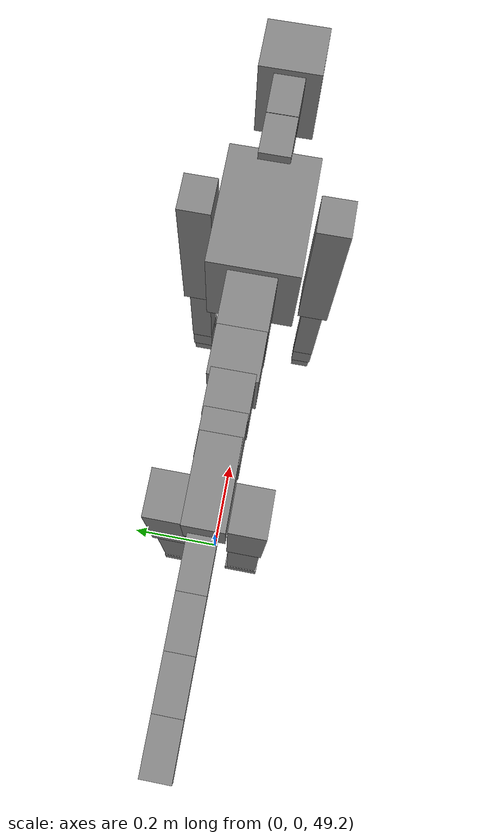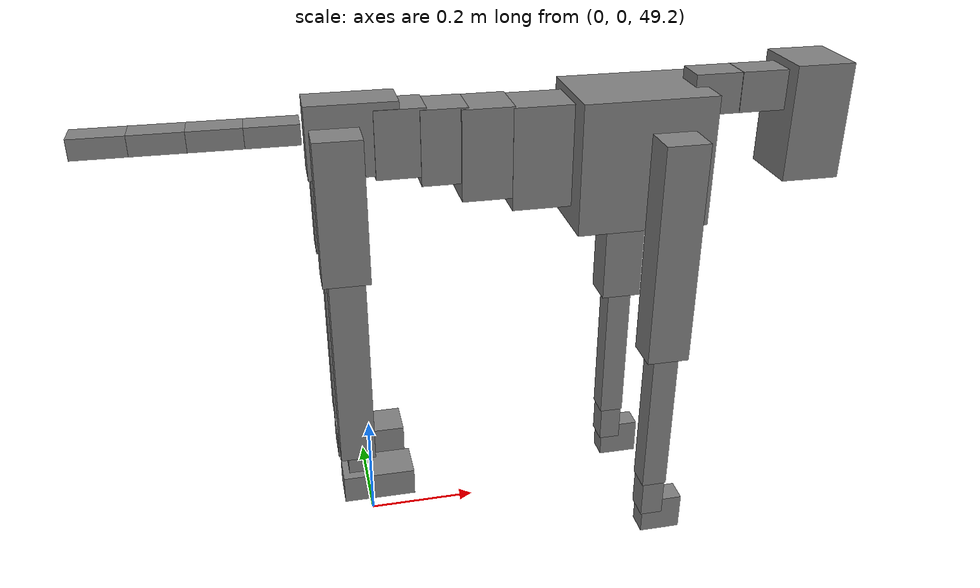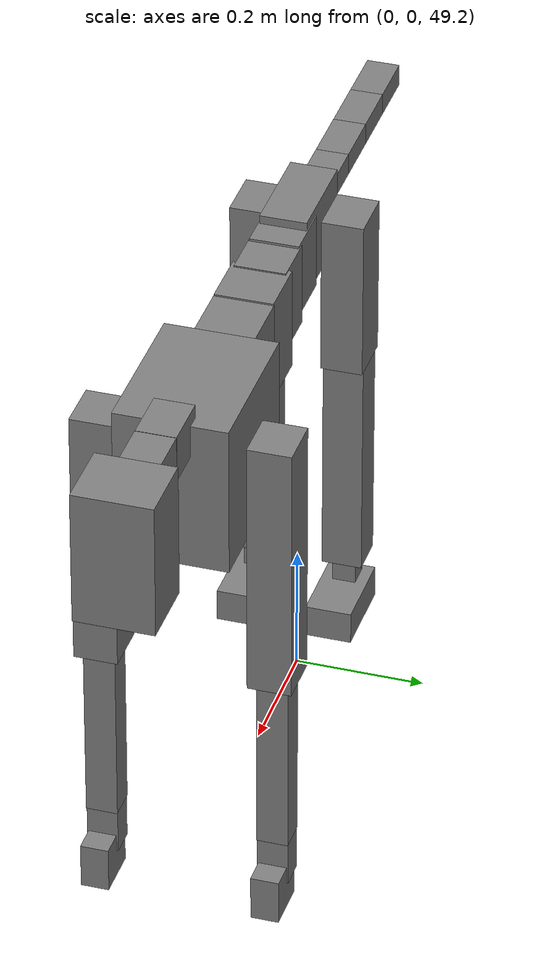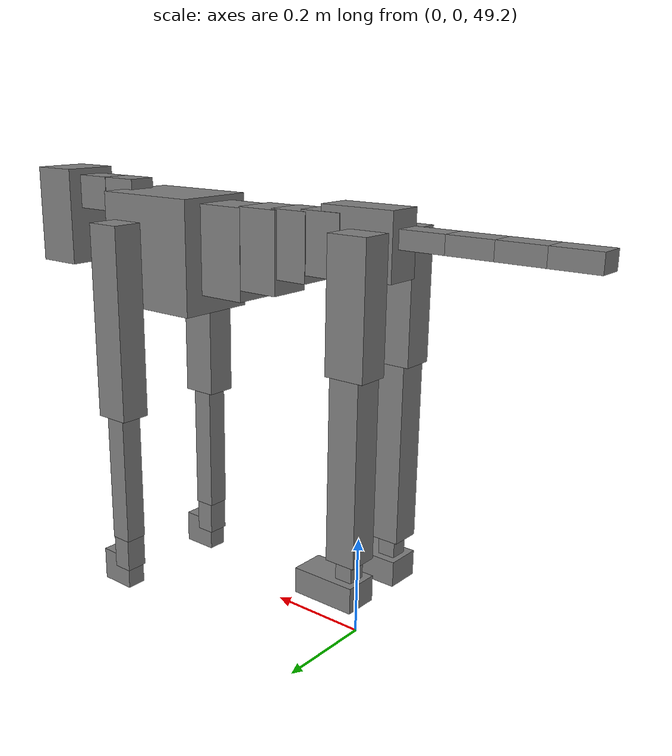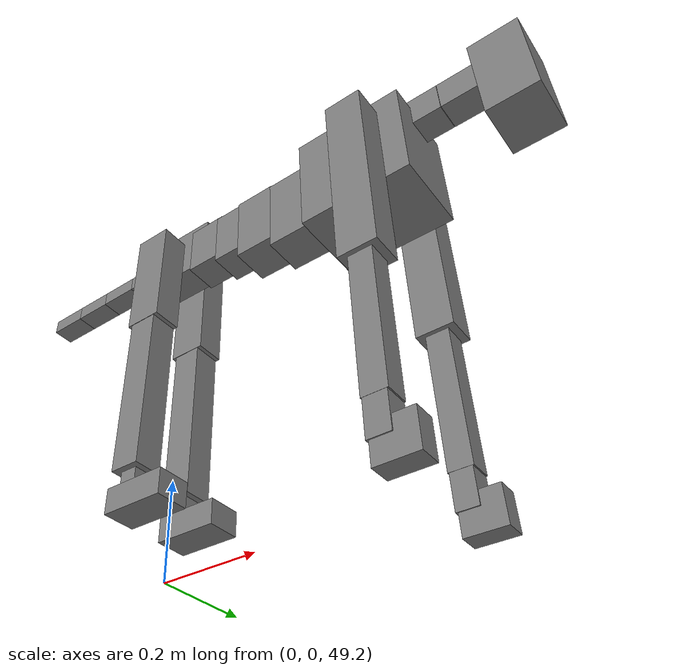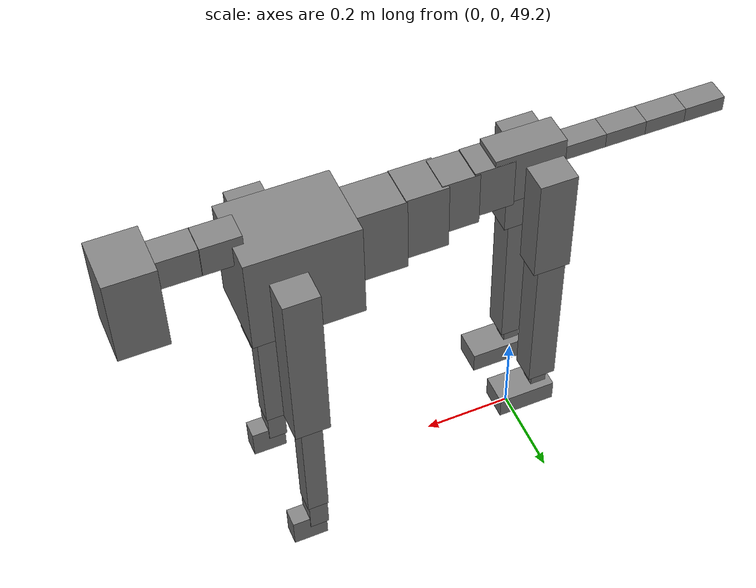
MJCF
<mujoco model="dog">

    <default>
        <joint armature="0.02" stiffness="1" damping="0.2" limited="true"/>
        <geom condim="3" friction="1 0.05 0.05" margin="0.01"/>
        <motor ctrllimited="true" ctrlrange="-1.0 1.0" forcelimited="true" gear="50"/>
    </default>

    <compiler inertiafromgeom="true" angle="radian"/>

    <option timestep="0.016" iterations="50" tolerance="1e-10" solver="Newton" jacobian="dense" cone="pyramidal"/>

    <size nconmax="20000" njmax="60000" nstack="5000000"/>
    <visual>
        <map force="0.1" zfar="30"/>
        <rgba haze="0.15 0.25 0.35 1"/>
        <quality shadowsize="2048"/>
        <global offwidth="800" offheight="800"/>
    </visual>

    <asset>
        <texture type="skybox" builtin="gradient" rgb1="0.3 0.5 0.7" rgb2="0 0 0" width="512" height="512"/>
        <texture name="texplane" type="2d" builtin="checker" rgb1=".2 .3 .4" rgb2=".1 0.15 0.2" width="512" height="512"
                 mark="cross" markrgb=".8 .8 .8"/>
        <texture name="texgeom" type="cube" builtin="flat" mark="cross" width="127" height="1278" rgb1="0.8 0.6 0.4"
                 rgb2="0.8 0.6 0.4" markrgb="1 1 1" random="0.01"/>

        <material name="matplane" reflectance="0.3" texture="texplane" texrepeat="1 1" texuniform="true"/>
        <material name="matgeom" texture="texgeom" texuniform="true" rgba="0.8 0.6 .4 1"/>
    </asset>

    <worldbody>
        <geom name="floor" pos="0 0 0" size="0 0 .25" type="plane" material="matplane" condim="3"/>

        <light directional="false" diffuse=".2 .2 .2" specular="0 0 0" pos="0 0 5" dir="0 0 -1" castshadow="false"/>
        <light mode="targetbodycom" target="torso" directional="false" diffuse=".8 .8 .8" specular="0.3 0.3 0.3"
               pos="0 0 4.0" dir="0 0 -1"/>

        <body name="root" pos="0 0 50">
            <freejoint name="root_1"/>
            <geom type="box" pos="0 0 -0.02" size="0.0774  0.0358  0.063" density="2030"/>

            <body name="spine1" pos="0.054 0 0">
                <joint name="spine1_y" axis="0 1 0" range="0 0.7" limited="true"/>
                <geom type="box" pos="0.02375 0 -0.03" size="0.04375  0.0375  0.05985" density="2030"/>

                <body name="spine2" pos="0.0612 0 0">
                    <joint name="spine2_y" axis="0 1 0" range="-0.15 0.15" limited="true"/>
                    <geom type="box" pos="0.03555  0  -0.04" size="0.04055  0.039  0.06615" density="2030"/>

                    <body name="spine3" pos="0.0730 0 0">
                        <joint name="spine3_y" axis="0 1 0" range="-0.15 0.15" limited="true"/>
                        <geom type="box" pos="0.03555  0  -0.057" size="0.04555  0.0445  0.081" density="2030"/>

                        <body name="spine4" pos="0.0780 0 0">
                            <joint name="spine4_y" axis="0 1 0" range="-0.15 0.15" limited="true"/>
                            <geom type="box" pos="0.05265  0  -0.07" size="0.05265  0.045  0.09135" density="2030"/>

                            <body name="torso" pos="0.1082 0 0">
                                <joint name="torso_y" axis="0 1 0" range="-0.15 0.15" limited="true"/>
                                <geom type="box" pos="0.11925  0  -0.085" size="0.11925  0.085  0.11745"
                                      density="2030"/>

                                <body name="neck1" pos="0.2160  0   0.0180">
                                    <joint name="neck1_y" axis="0 1 0" range="-1.2  -1" limited="true"/>
                                    <geom type="box" pos="0.0423  0  0" size="0.0423  0.03  0.036" density="2325"/>

                                    <body name="neck2" pos="0.0853  0  0">
                                        <joint name="neck2_y" axis="0 1 0" range="0.1  0" limited="true"/>
                                        <geom type="box" pos="0.0423  0  0" size="0.0423  0.03  0.036" density="2325"/>

                                        <body name="head" pos="0.0853  0  0">
                                            <joint name="head_y" axis="0 1 0" range="-0.3  -0.2" limited="true"/>
                                            <geom type="box" pos="0.0531  0  -0.055" size="0.0531  0.06  0.1044"
                                                  density="4030"/>

                                        </body>
                                    </body>
                                </body>

                                <body name="front_shoulder" pos="0.156  0   -0.0480">
                                    <joint name="front_shoulder_y" axis="0 1 0" range="-1 1.5" limited="true"/>
                                    <geom type="box" pos="0 0.13 -0.1781" size="0.0386  0.0330  0.2047" density="1158"/>
                                    <geom type="box" pos="0 -0.13 -0.1781" size="0.0386  0.0330  0.2047"
                                          density="1158"/>

                                    <body name="front_elbow" pos="0  0  -0.3561">
                                        <joint name="front_elbow_y" axis="0 1 0" range="-2 0" limited="true"/>
                                        <geom type="box" pos="0 0.13 -0.1544" size="0.0234  0.0239  0.1544"
                                              density="1081"/>
                                        <geom type="box" pos="0 -0.13 -0.1544" size="0.0234  0.0239  0.1544"
                                              density="1081"/>

                                        <body name="front_wrist" pos="0  0  -0.3088">
                                            <joint name="front_wrist_y" axis="0 1 0" range="-0.2 0" limited="true"/>
                                            <geom type="box" pos="0 0.13 -0.0287" size="0.0212  0.0236  0.0419"
                                                  density="1664"/>
                                            <geom type="box" pos="0 -0.13 -0.0287" size="0.0212  0.0236  0.0419"
                                                  density="1664"/>

                                            <body name="front_finger_end" pos="0  0  -0.0575">
                                                <joint name="front_finger_y" axis="0 1 0" range="-0.4 1"
                                                       limited="true"/>
                                                <geom type="box" pos="0.0213  0.13  -0.0207"
                                                      size="0.0390  0.0213  0.0357" density="1515"/>
                                                <geom type="box" pos="0.0213  -0.13  -0.0207"
                                                      size="0.0390  0.0213  0.0357" density="1515"/>

                                            </body>

                                        </body>
                                    </body>
                                </body>

                            </body>
                        </body>
                    </body>
                </body>
            </body>

            <body name="back_hip" pos="-0.03 0 -0.018">
                <joint name="back_hip_y" axis="0 1 0" range="-1.5 0.3" limited="true"/>
                <geom type="box" pos="0 0.07 -0.1041" size="0.0409  0.0321  0.1269" density="1154"/>
                <geom type="box" pos="0 -0.07 -0.1041" size="0.0409  0.0321  0.1269" density="1154"/>

                <body name="back_knee" pos="0  0  -0.2082">
                    <joint name="back_knee_y" axis="0 1 0" range="0 2.8" limited="true"/>
                    <geom type="box" pos="0 0.07 -0.1813" size="0.0313  0.0309  0.1969" density="1227"/>
                    <geom type="box" pos="0 -0.07 -0.1813" size="0.0313  0.0309  0.1969" density="1227"/>

                    <body name="back_ankle" pos="0  0  -0.3627">
                        <joint name="back_ankle_y" axis="0 1 0" range="-2.2 0" limited="true"/>
                        <geom type="box" pos="0 0.07 -0.0345" size="0.0179  0.0179  0.0457" density="1284"/>
                        <geom type="box" pos="0 -0.07 -0.0345" size="0.0179  0.0179  0.0457" density="1284"/>

                        <body name="back_toe_end" pos="0  0  -0.0690">
                            <joint name="back_toe_y" axis="0 1 0" range="-0.4 1" limited="true"/>
                            <geom type="box" pos="0.0355  0.07  -0.0107" size="0.0651  0.0355  0.0257" density="1515"/>
                            <geom type="box" pos="0.0355  -0.07  -0.0107" size="0.0651  0.0355  0.0257" density="1515"/>

                        </body>
                    </body>
                </body>
            </body>

            <body name="tail1" pos="-0.074 0 -0.006">
                <joint name="tail1_y" axis="0 1 0" range="-0.2 0.2" limited="true"/>
                <geom type="box" pos="-0.0536  0  0" size="0.045  0.025  0.0175" density="1587"/>

                <body name="tail2" pos="-0.09 0 0">
                    <joint name="tail2_y" axis="0 1 0" range="-0.2 0.2" limited="true"/>
                    <geom type="box" pos="-0.0536  0  0" size="0.045  0.025  0.0175" density="1587"/>

                    <body name="tail3" pos="-0.09 0 0">
                        <joint name="tail3_y" axis="0 1 0" range="-0.2 0.2" limited="true"/>
                        <geom type="box" pos="-0.0536  0  0" size="0.045  0.025  0.0175" density="1587"/>

                        <body name="tail4" pos="-0.09 0 0">
                            <joint name="tail4_y" axis="0 1 0" range="-0.2 0.2" limited="true"/>
                            <geom type="box" pos="-0.0536  0  0" size="0.045  0.025  0.0175" density="1587"/>

                        </body>
                    </body>
                </body>
            </body>
        </body>
    </worldbody>

    <actuator>
        <motor joint="spine1_y" forcerange="-150 150     "/>
        <motor joint="spine2_y" forcerange="-150 150     "/>
        <motor joint="spine3_y" forcerange="-150 150     "/>
        <motor joint="spine4_y" forcerange="-150 150     "/>
        <motor joint="torso_y" forcerange="-150 150     "/>
        <motor joint="neck1_y" forcerange="-100 100       "/>
        <motor joint="neck2_y" forcerange="-100 100       "/>
        <motor joint="head_y" forcerange="-150 150       "/>
        <motor joint="front_shoulder_y" forcerange="-193.54 126.30"/>
        <motor joint="front_elbow_y" forcerange="-122.85 150.83"/>
        <motor joint="front_wrist_y" forcerange="-126.92 61.90"/>
        <motor joint="front_finger_y" forcerange="-48.24 25.15"/>
        <motor joint="back_hip_y" forcerange="-385.42 242.21"/>
        <motor joint="back_knee_y" forcerange="-255.33 393.76"/>
        <motor joint="back_angle_y" forcerange="-80.68 106.49"/>
        <motor joint="back_toe_y" forcerange="-98.48 105.46"/>
        <motor joint="tail1_y" forcerange="-50 50     "/>
        <motor joint="tail2_y" forcerange="-50 50     "/>
        <motor joint="tail3_y" forcerange="-50 50     "/>
        <motor joint="tail4_y" forcerange="-50 50     "/>
    </actuator>
</mujoco>
